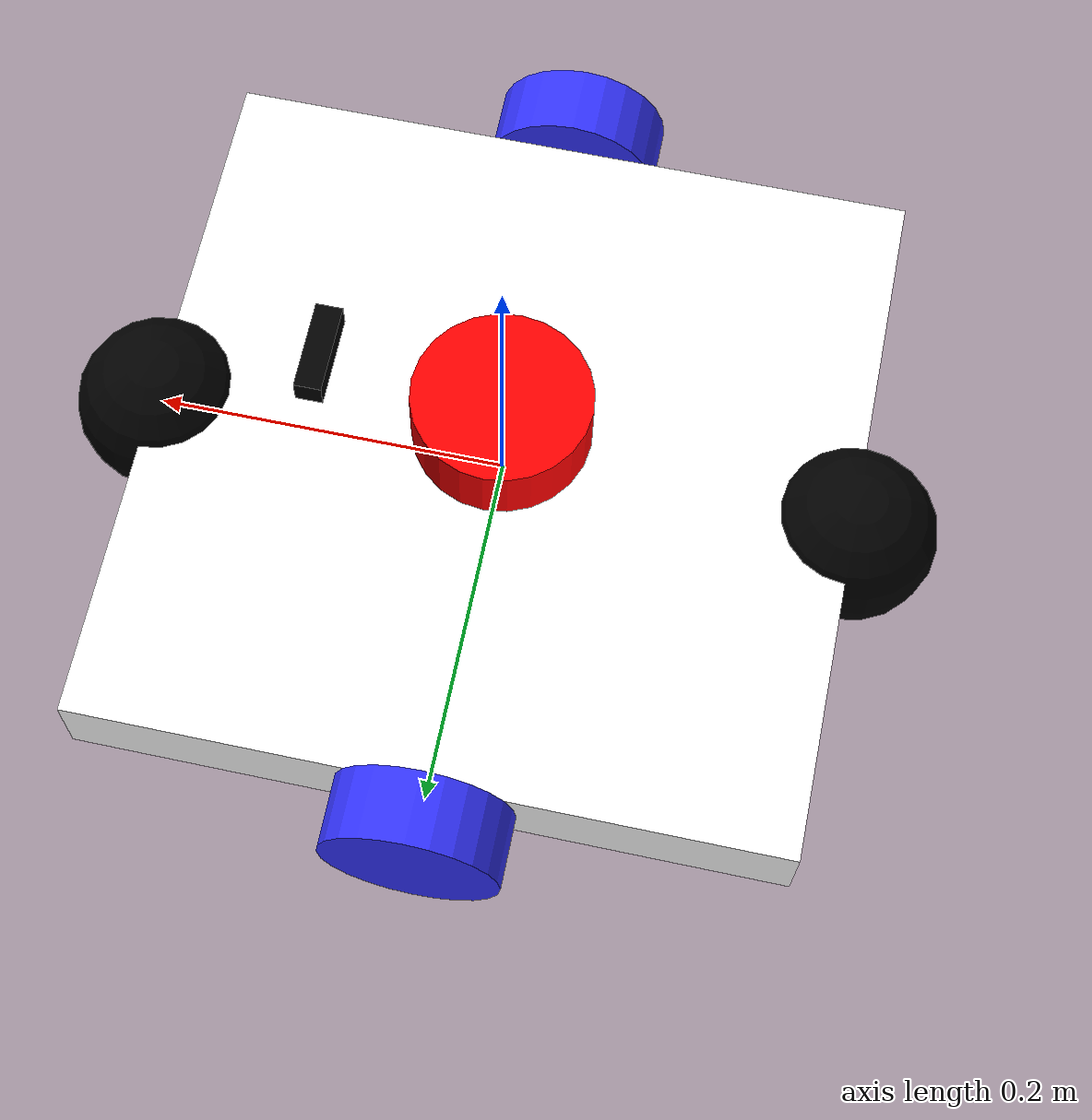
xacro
<?xml version="1.0"?>
<robot xmlns:xacro="http://www.ros.org/wiki/xacro" name="foxtrot_robot">

    <!-- Included URDF Modules -->
    <xacro:include filename="properties.xacro"/>
    <xacro:include filename="robot_core.xacro"/>
    <!-- Including sensors -->
    <xacro:include filename="lidar.xacro"/>
    <xacro:include filename="imu.xacro"/>
    <xacro:include filename="camera.xacro"/>
    <!-- Including ros2_control -->
    <xacro:include filename="ros2_control.xacro"/>
</robot>

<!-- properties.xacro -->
<robot xmlns:xacro="http://www.ros.org/wiki/xacro">
    <!-- Color Definitions -->
    <material name="white">
        <color rgba= "1 1 1 1"/>
    </material>

    <material name="orange">
        <color rgba= "1 0.3 0.1 1"/>
    </material>

    <material name="blue">
        <color rgba= "0.2 0.2 1 1"/>
    </material>

    <material name="black">
        <color rgba= "0 0 0 1"/>
    </material>

    <material name="red">
        <color rgba= "1 0 0 1"/>
    </material>

</robot>

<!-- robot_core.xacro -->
<robot xmlns:xacro="http://www.ros.org/wiki/xacro">

    <!-- Example link -->
    <xacro:include filename="inertial_macros.xacro"/>

    <xacro:property name="rad_w" value="0.05"/>
    <xacro:property name="le_w" value="0.04"/>
    <xacro:property name="ly" value="0.4"/>
    <xacro:property name="lx" value="0.4"/>
    <xacro:property name="lz" value="0.05"/>

    <!-- Example link -->
    <link name="base_link">
    </link>

    <joint name="base_link_joint" type="fixed">
        <parent link="base_link"/>
        <child link="chassis"/>
        <origin xyz="0 0 0"/>
    </joint>

    <!-- chassis link -->
    <link name="chassis">
        <visual>
            <origin xyz="0 0 0"/>
            <geometry>
                <box size="${lx} ${ly} ${lz}"/>
            </geometry>
            <material name="white"/>
        </visual>
        <collision>
            <origin xyz="0 0 0"/>
            <geometry>
               <box size="${lx} ${ly} ${lz}"/>
            </geometry>
        </collision>
        <xacro:inertial_box mass="5.0" x="${lx}" y="${ly}" z="${lz}">
            <origin xyz="0 0 0" rpy="0 0 0"/>
        </xacro:inertial_box>
    </link>

    <!-- left wheel joint -->
    <joint name="left_wheel_joint" type="continuous">
        <parent link="chassis"/>
        <child link="left_wheel"/>
        <origin xyz="0 ${ly/2+le_w/2} 0.0" rpy="-${pi/2} 0 0"/>
        <axis xyz="0 0 1"/>
        <dynamics damping="0.2" friction="0.0"/>
    </joint>

    <!-- left wheel link -->
    <link name="left_wheel">
        <visual>
            <geometry>
                <cylinder radius="${rad_w}" length="${le_w}"/>
            </geometry>
            <material name="blue"/>
        </visual>
        <collision>
            <geometry>
                  <sphere radius="${rad_w}" />
            </geometry>

        </collision>
        <xacro:inertial_cylinder mass="0.1" length="${le_w}" radius="${rad_w}">
            <origin xyz="0 0 0" rpy="0 0 0"/>
        </xacro:inertial_cylinder>
    </link>

    <!-- right wheel joint -->
    <joint name="right_wheel_joint" type="continuous">
        <parent link="chassis"/>
        <child link="right_wheel"/>
        <origin xyz="0 -${ly/2+le_w/2} 0.0" rpy="${pi/2} 0 0"/>
        <axis xyz="0 0 -1"/>
        <dynamics damping="0.2" friction="0.0"/>
    </joint>

    <!-- right wheel link -->
    <link name="right_wheel">
        <visual>
            <geometry>
                <cylinder radius="${rad_w}" length="${le_w}"/>
            </geometry>
            <material name="blue"/>
        </visual>
        <collision>
            <geometry>
                  <sphere radius="${rad_w}" />
            </geometry>

        </collision>
        <xacro:inertial_cylinder mass="0.1" length="${le_w}" radius="${rad_w}">
            <origin xyz="0 0 0" rpy="0 0 0"/>
        </xacro:inertial_cylinder>
    </link>

    <!-- caster wheel joint -->
    <joint name="caster_front_wheel_joint" type="fixed">
        <parent link="chassis"/>
        <child link="caster_front_wheel"/>
        <origin xyz="${lx/2} 0 0.0"/>
    </joint>

    <!-- left wheel link -->
    <link name="caster_front_wheel">
        <visual>
            <geometry>
                <sphere radius="0.049"/>
            </geometry>
            <material name="black"/>
        </visual>
        <collision>
            <geometry>
                <sphere radius="0.049"/>
            </geometry>
            <!-- Removed the surface setup for the caster front wheel -->
        </collision>
        <xacro:inertial_sphere mass="0.1" radius="0.049">
            <origin xyz="0 0 0" rpy="0 0 0"/>
        </xacro:inertial_sphere>
    </link>

     <!-- caster wheel joint -->
    <joint name="caster_rear_wheel_joint" type="fixed">
        <parent link="chassis"/>
        <child link="caster_rear_wheel"/>
        <origin xyz="${-lx/2} 0 0.0"/>
    </joint>

    <!-- left wheel link -->
    <link name="caster_rear_wheel">
        <visual>
            <geometry>
                <sphere radius="0.049"/>
            </geometry>
            <material name="black"/>
        </visual>
        <collision>
            <geometry>
                <sphere radius="0.049"/>
            </geometry>
            <surface>
                <friction>
                <ode>
                    <mu>0.01</mu>
                    <mu2>0.01</mu2>
                </ode>
                </friction>
            </surface>
        </collision>
        <xacro:inertial_sphere mass="0.1" radius="0.049">
            <origin xyz="0 0 0" rpy="0 0 0"/>
        </xacro:inertial_sphere>
    </link>
    <!-- GAZEBO PHYSICS AND FRICTION PROPERTIES         -->
        <!-- Left Drive Wheel -->
    <gazebo reference="left_wheel">
        <mu1>1.0</mu1>
        <mu2>1.0</mu2>
        <kp>1000000.0</kp>
        <kd>100.0</kd>
        <minDepth>0.001</minDepth>
        <maxVel>0.1</maxVel>
        <material>Gazebo/Blue</material>
    </gazebo>

    <!-- Right Drive Wheel -->
    <gazebo reference="right_wheel">
        <mu1>1.0</mu1>
        <mu2>1.0</mu2>
        <kp>1000000.0</kp>
        <kd>100.0</kd>
        <minDepth>0.001</minDepth>
        <maxVel>0.1</maxVel>
        <material>Gazebo/Blue</material>
    </gazebo>

    <!-- Front Caster Wheel -->
    <gazebo reference="caster_front_wheel">
        <mu1>0.001</mu1>
        <mu2>0.001</mu2>
        <kp>1000000.0</kp>
        <kd>100.0</kd>
        <minDepth>0.001</minDepth>
        <maxVel>1.0</maxVel>
        <material>Gazebo/Black</material>
    </gazebo>

    <!-- Rear Caster Wheel -->
    <gazebo reference="caster_rear_wheel">
        <mu1>0.001</mu1>
        <mu2>0.001</mu2>
        <kp>1000000.0</kp>
        <kd>100.0</kd>
        <minDepth>0.001</minDepth>
        <maxVel>1.0</maxVel>
        <material>Gazebo/Black</material>
    </gazebo>

</robot>

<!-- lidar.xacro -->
<robot xmlns:xacro="http://www.ros.org/wiki/xacro" >
    <!-- Lidar physical representation link -->
    <link name="lidar_link">
         <visual>
            <geometry>
                <cylinder radius="${rad_w}" length="${le_w}"/>
            </geometry>
            <material name="red"/>
        </visual>
        <collision>
            <geometry>
                <cylinder radius="${rad_w}" length="${le_w}"/>
            </geometry>
        </collision>
        <xacro:inertial_cylinder mass="0.1" length="${le_w}" radius="${rad_w}">
            <origin xyz="0 0 0" rpy="0 0 0"/>
        </xacro:inertial_cylinder>
    </link>

    <joint name="lidar_chassis_joint" type="fixed">
        <parent link="chassis"/>
        <child link="lidar_link"/>
        <origin xyz="0 0 ${le_w/2+lz}" rpy="0 0 0"/>
    </joint>

<!-- Here you declare the lidar class that gazebo will interpret -->
    <gazebo reference="lidar_link">
    <sensor name="lidar" type="gpu_lidar">
        <always_on>true</always_on>
        <!-- Frequency of sampling 10hz -->
        <update_rate>45</update_rate>
        <visualize>true</visualize>
        <topic>scan</topic>
        <gz_frame_id>lidar_link</gz_frame_id>

        <lidar>
        <!-- Lidar Rotation Mapping -->
        <scan>
            <horizontal>
            <samples>720</samples>
            <min_angle>-3.14159</min_angle>
            <max_angle>3.14159</max_angle>
            </horizontal>
        </scan>
        <!-- Maximum and minimum measurable values in meters -->
        <range>
            <min>0.05</min>
            <max>12.0</max>
        </range>
        </lidar>
    </sensor>
    </gazebo>

</robot>

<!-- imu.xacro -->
<robot xmlns:xacro="http://www.ros.org/wiki/xacro">

    <!-- IMU physical representation link -->
    <link name="imu_link">
        <visual>
            <geometry>
                <box size="0.02 0.02 0.01"/>
            </geometry>
            <material name="black"/>
        </visual>
        <collision>
            <geometry>
                <box size="0.02 0.02 0.01"/>
            </geometry>
        </collision>
        <inertial>
            <mass value="0.05" />
            <origin xyz="0 0 0" rpy="0 0 0" />
            <inertia ixx="0.00001" ixy="0" ixz="0" iyy="0.00001" iyz="0" izz="0.00001" />
        </inertial>
    </link>

    <joint name="imu_chassis_joint" type="fixed">
        <parent link="chassis"/>
        <child link="imu_link"/>
        <!-- Adjust origin Z value as needed to sit above your chassis -->
        <origin xyz="0 0 0.05" rpy="0 0 0"/>
    </joint>

    <!-- Required plugin to process IMU data in Gazebo Harmonic -->
    <gazebo>
        <plugin filename="gz-sim-imu-system" name="gz::sim::systems::Imu"/>
    </gazebo>

    <!-- Here you declare the imu class that gazebo will interpret -->
    <gazebo reference="imu_link">
        <sensor name="imu" type="imu">
            <always_on>true</always_on>
            <!-- Frequency of sampling 100hz -->
            <update_rate>100</update_rate>
            <visualize>true</visualize>
            <topic>imu</topic>
            <gz_frame_id>imu_link</gz_frame_id>

            <imu>
                <angular_velocity>
                    <x><noise type="gaussian"><mean>0.0</mean><stddev>0.0002</stddev></noise></x>
                    <y><noise type="gaussian"><mean>0.0</mean><stddev>0.0002</stddev></noise></y>
                    <z><noise type="gaussian"><mean>0.0</mean><stddev>0.0002</stddev></noise></z>
                </angular_velocity>
                <linear_acceleration>
                    <x><noise type="gaussian"><mean>0.0</mean><stddev>0.017</stddev></noise></x>
                    <y><noise type="gaussian"><mean>0.0</mean><stddev>0.017</stddev></noise></y>
                    <z><noise type="gaussian"><mean>0.0</mean><stddev>0.017</stddev></noise></z>
                </linear_acceleration>
            </imu>
        </sensor>
    </gazebo>

</robot>

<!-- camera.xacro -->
<robot xmlns:xacro="http://www.ros.org/wiki/xacro">

    <!-- Physical Camera Link -->
    <link name="camera_link">
        <visual>
            <geometry>
                <box size="0.015 0.05 0.015"/>
            </geometry>
            <material name="black"/>
        </visual>
        <collision>
            <geometry>
                <box size="0.015 0.05 0.015"/>
            </geometry>
        </collision>
        <inertial>
            <mass value="0.05"/>
            <origin xyz="0 0 0" rpy="0 0 0"/>
            <inertia ixx="0.00001" ixy="0" ixz="0" iyy="0.00001" iyz="0" izz="0.00001"/>
        </inertial>
    </link>

    <joint name="camera_chassis_joint" type="fixed">
        <parent link="chassis"/>
        <child link="camera_link"/>
        <!-- Placed at the front of the chassis. Adjust X and Z as necessary -->
        <origin xyz="0.1 0 0.1" rpy="0 0 0"/>
    </joint>

    <!-- Virtual Optical Link for ROS 2 Image Data Convention -->
    <link name="camera_link_optical"></link>

    <joint name="camera_optical_joint" type="fixed">
        <parent link="camera_link"/>
        <child link="camera_link_optical"/>
        <origin xyz="0 0 0" rpy="${-pi/2} 0 ${-pi/2}"/>
    </joint>
    <!-- Gazebo Camera Configuration -->
    <gazebo reference="camera_link">
        <sensor name="robot_camera" type="camera">
            <always_on>true</always_on>
            <update_rate>30</update_rate>
            <visualize>true</visualize>
            <topic>camera/image_raw</topic>
            <!-- Data bound to the optical frame -->
            <gz_frame_id>camera_link_optical</gz_frame_id>

            <camera>
                <!-- Widened to 1.57 radians (90 degrees) for peripheral vision -->
                <horizontal_fov>1.57</horizontal_fov>
                <image>
                    <width>640</width>
                    <height>480</height>
                    <format>R8G8B8</format>
                </image>
                <clip>
                    <near>0.05</near>
                    <far>15.0</far> <!-- Extended view distance -->
                </clip>
                <noise>
                    <type>gaussian</type>
                    <mean>0.0</mean>
                    <stddev>0.007</stddev>
                </noise>
            </camera>
        </sensor>
    </gazebo>

</robot>
